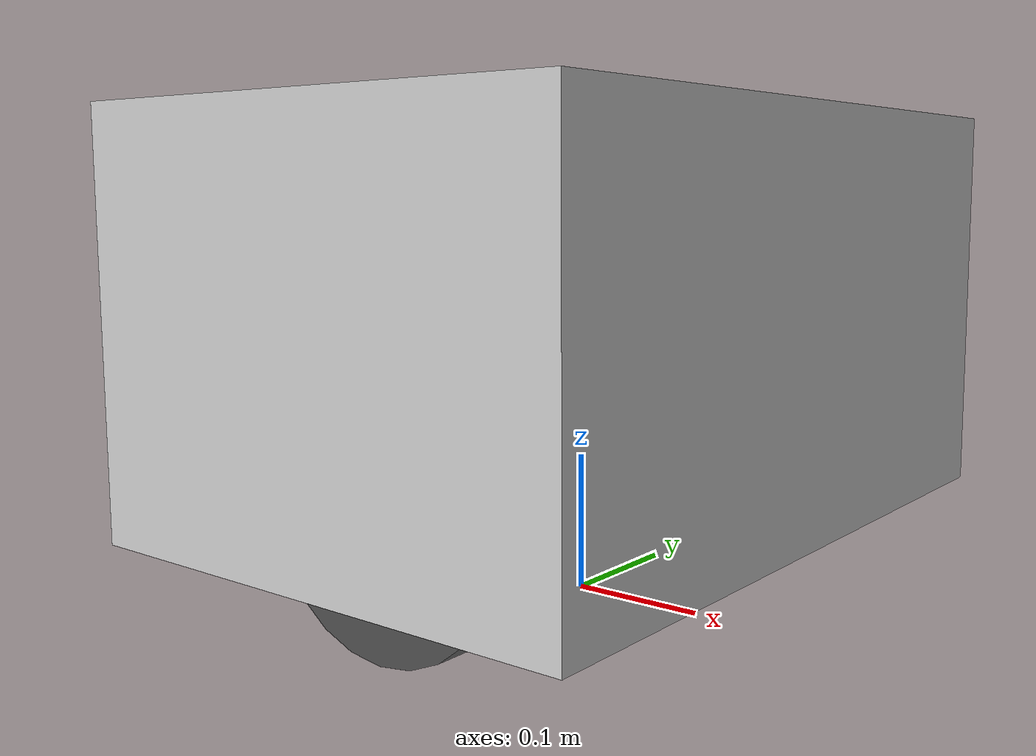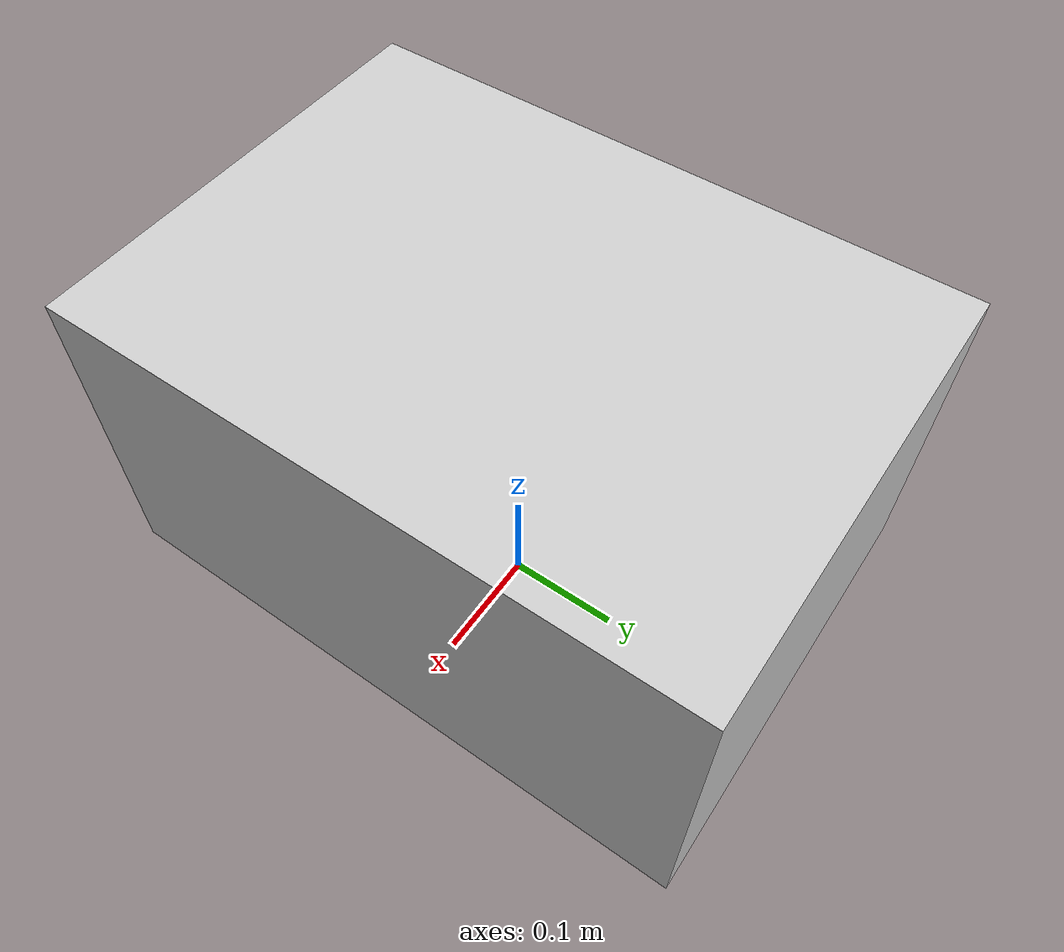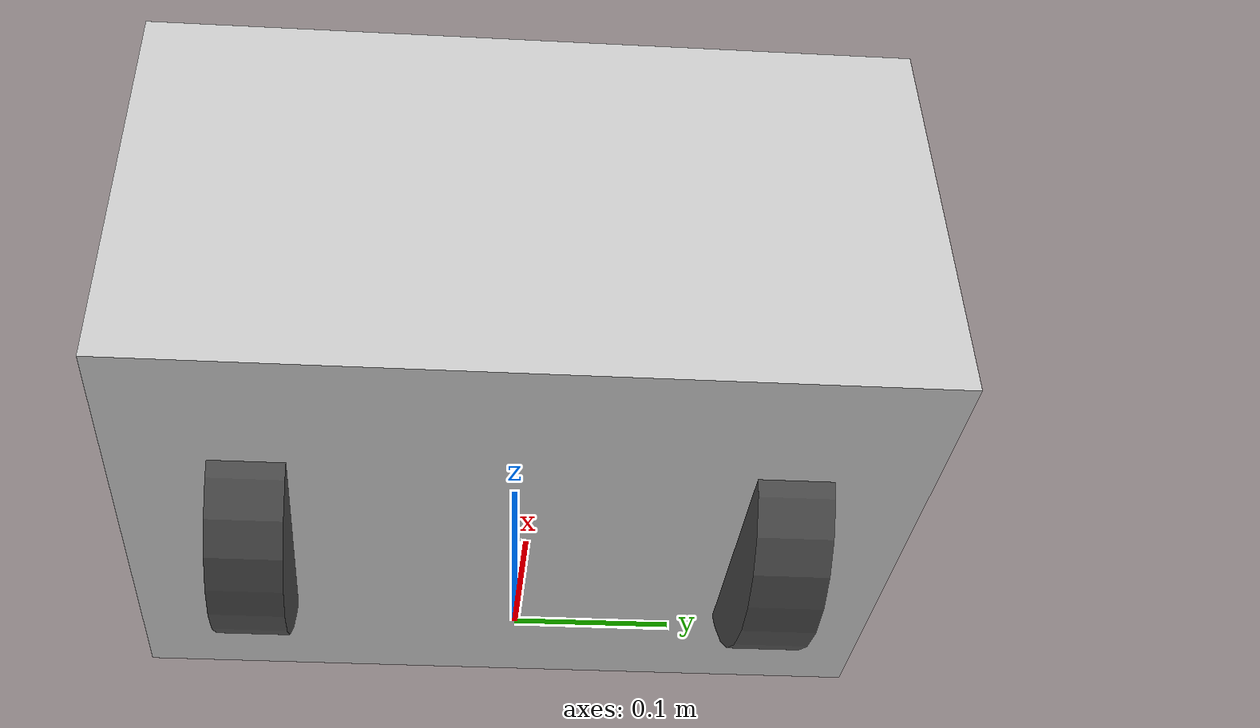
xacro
<?xml version="1.0"?>
<!-- Basic differential drive mobile base -->
<robot xmlns:xacro="http://www.ros.org/wiki/xacro" name="shark_mb">

  <xacro:include filename="$(find shark_description)/urdf/shark_description.xacro" />

  <!-- Import Rviz colors -->
  <xacro:include filename="$(find shark_description)/urdf/shark_materials.xacro" />

  <!-- Import diffbot ros2_control description -->
  <xacro:include filename="$(find shark_description)/ros2_control/shark_ros2_control.xacro" />

</robot>

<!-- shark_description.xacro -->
<robot xmlns:xacro="http://www.ros.org/wiki/xacro" name="shark">

  <xacro:property name="base_width" value="0.531"/>
  <xacro:property name="base_len" value="0.3785"/>
  <xacro:property name="base_height" value="0.2895"/>
  <xacro:property name="wheel_radius" value="0.1"/>
  <xacro:property name="base_wheel_gap" value="-0.09"/>
  <xacro:property name="wheel_separation" value="0.35"/>
  <xacro:property name="wheel_joint_offset" value="-0.005"/>
  <xacro:property name="caster_height" value="0.060575"/>

  <xacro:macro name="box_inertia" params="m w h d">
    <inertial>
      <mass value="${m}"/>
      <inertia ixx="${m / 12.0 * (d*d + h*h)}" ixy="0.0" ixz="0.0" iyy="${m / 12.0 * (w*w + h*h)}" iyz="0.0" izz="${m / 12.0 * (w*w + d*d)}"/>
    </inertial>
  </xacro:macro>

  <link name="base_footprint">
    <xacro:box_inertia m="8" w="0.001" h="0.001" d="0.001"/>
    <visual>
      <origin xyz="0 0 0" rpy="0 0 0" />
      <material name="white"/>
        <geometry>
            <box size="0.001 0.001 0.001" />
        </geometry>
    </visual>
  </link>

  <link name="base_link">
    <xacro:box_inertia m="1" w="${base_len}" h="${base_width}" d="0.01"/>
    <visual>
      <material name="lightgray"/>
      <geometry>
        <box size="${base_len} ${base_width} ${base_height}"/>
      </geometry>
    </visual>
    <collision>
      <geometry>
        <box size="${base_len} ${base_width} ${base_height}"/>
      </geometry>
    </collision>
  </link>

  <joint name="base_link_joint" type="fixed">
    <origin xyz="0 0 ${base_height/2 + caster_height}" rpy="0 0 0" />
    <parent link="base_footprint"/>
    <child link="base_link" />
  </joint>

  <xacro:macro name="cylinder_inertia" params="m r h">
    <inertial>
      <mass value="${m}"/>
      <inertia ixx="${m*(3*r*r+h*h)/12}" ixy = "0" ixz = "0" iyy="${m*(3*r*r+h*h)/12}" iyz = "0" izz="${m*r*r/2}"/>
    </inertial>
  </xacro:macro>

  <xacro:macro name="wheel" params="prefix reflect">
    <link name="${prefix}_wheel">
      <visual>
	<material name="darkgray"/>
        <origin xyz="0 0 0" rpy="${pi/2} 0 0"/>
        <geometry>
          <cylinder radius="${wheel_radius}" length="0.05"/>
        </geometry>
      </visual>
      <collision>
        <origin xyz="0 0 0" rpy="${pi/2} 0 0"/>
        <geometry>
          <cylinder radius="${wheel_radius}" length="0.05"/>
        </geometry>
      </collision>
      <xacro:cylinder_inertia m="10" r="${wheel_radius}" h="0.05"/>
    </link>

    <joint name="${prefix}_wheel" type="continuous">
      <axis xyz="0 1 0" rpy="0 0 0" />
      <parent link="base_link"/>
      <child link="${prefix}_wheel"/>
      <origin xyz="${wheel_joint_offset} ${((base_width/2)+base_wheel_gap)*reflect} ${(wheel_radius - caster_height) - base_height/2}" rpy="0 0 0"/>
    </joint>
  </xacro:macro>

  <xacro:wheel prefix="left" reflect="1"/>
  <xacro:wheel prefix="right" reflect="-1"/>

  <xacro:macro name="sphere_inertia" params="m r">
    <inertial>
      <mass value="${m}"/>
      <inertia ixx="${2.0*m*(r*r)/5.0}" ixy="0.0" ixz="0.0" iyy="${2.0*m*(r*r)/5.0}" iyz="0.0" izz="${2.0*m*(r*r)/5.0}"/>
    </inertial>
  </xacro:macro>

</robot>
